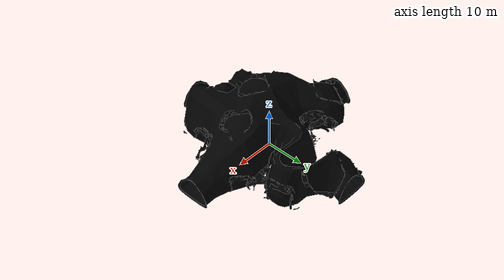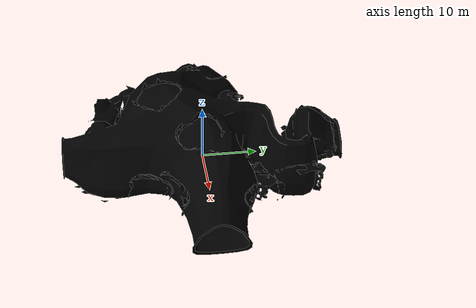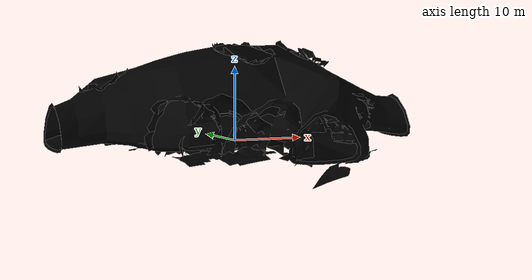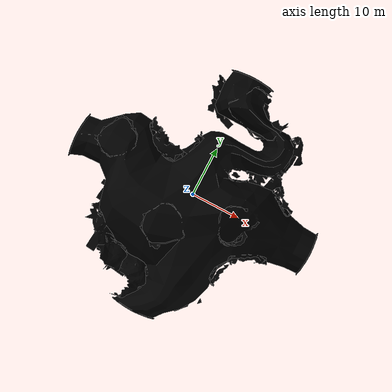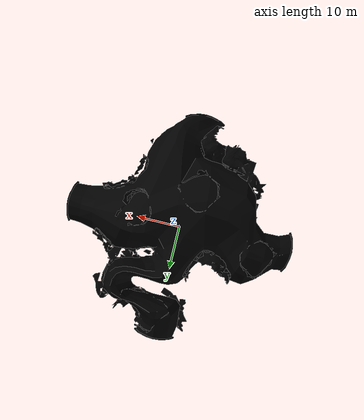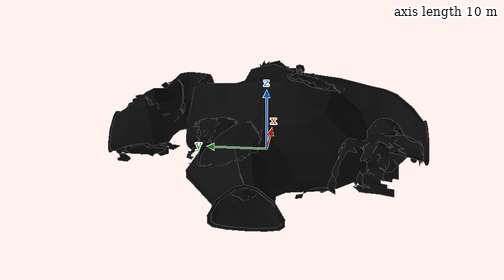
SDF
<sdf version="1.6">
  <model name="Cave 4 Way 01 Lights Type A">
    <static>true</static>
    <include>
      <name>cave_4way_01_type_a</name>
      <uri>model://Cave 4 Way 01 Type A</uri>
    </include>
    <link name="lights">
      <light name="Omni012" type="spot">
        <pose>5.76187 0.0888174 5.11374 0 0 0</pose>
        <attenuation>
          <range>20</range>
          <linear>0.2</linear>
          <constant>1.0</constant>
          <quadratic>0.01</quadratic>
        </attenuation>
        <spot>
          <inner_angle>2.0</inner_angle>
          <outer_angle>3.1</outer_angle>
          <falloff>1.2</falloff>
        </spot>
        <cast_shadows>false</cast_shadows>
      </light>
      <light name="Omni013" type="spot">
        <pose>-11.574 -3.89308 6.40369 0 0 0</pose>
        <diffuse>0 0 0 1</diffuse>
        <specular>0 0 0 1</specular>
        <attenuation>
          <range>20</range>
          <linear>0.2</linear>
          <constant>1.0</constant>
          <quadratic>0.01</quadratic>
        </attenuation>
        <spot>
          <inner_angle>2.0</inner_angle>
          <outer_angle>3.1</outer_angle>
          <falloff>1.2</falloff>
        </spot>
        <cast_shadows>false</cast_shadows>
      </light>
    </link>
  </model>
</sdf>

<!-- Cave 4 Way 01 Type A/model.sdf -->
<sdf version="1.6">
  <model name="Cave 4 Way 01 Type A">
    <static>true</static>
    <link name="base_link">
      <collision name="collision">
        <pose>0 0 0 0 0 0</pose>
        <geometry>
          <mesh>
            <uri>model://Cave 4 Way 01 Type A/meshes/4way01.dae</uri>
            <scale>1.0 1.0 1.0</scale>
          </mesh>
        </geometry>
      </collision>
      <visual name="Gravel_visual">
        <geometry>
          <mesh>
            <uri>model://Cave 4 Way 01 Type A/meshes/4way01.dae</uri>
            <submesh>
              <name>Gravel</name>
              <center>false</center>
            </submesh>
          </mesh>
        </geometry>
        <material>
          <diffuse>0 0 0 1</diffuse>
          <specular>0 0 0 1</specular>
          <pbr>
            <metal>
              <albedo_map>model://Cave 4 Way 01 Type A/materials/textures/Gravel_Albedo.png</albedo_map>
              <normal_map>model://Cave 4 Way 01 Type A/materials/textures/Gravel_Normal.png</normal_map>
              <roughness_map>model://Cave 4 Way 01 Type A/materials/textures/Gravel_Roughness.png</roughness_map>
            </metal>
          </pbr>

          <script>
            <uri>model://Cave 4 Way 01 Type A/materials/scripts/</uri>
            <uri>model://Cave 4 Way 01 Type A/materials/textures/</uri>
            <name>CaveTile/Gravel_Diffuse</name>
          </script>
        </material>
      </visual>
      <visual name="RockPile_visual">
        <geometry>
          <mesh>
            <uri>model://Cave 4 Way 01 Type A/meshes/4way01.dae</uri>
            <submesh>
              <name>RockPile</name>
              <center>false</center>
            </submesh>
          </mesh>
        </geometry>
        <material>
          <diffuse>0 0 0 1</diffuse>
          <specular>0 0 0 1</specular>
          <pbr>
            <metal>
              <albedo_map>model://Cave 4 Way 01 Type A/materials/textures/RockPile_Albedo.png</albedo_map>
              <normal_map>model://Cave 4 Way 01 Type A/materials/textures/RockPile_Normal.png</normal_map>
              <roughness_map>model://Cave 4 Way 01 Type A/materials/textures/RockPile_Roughness.png</roughness_map>
            </metal>
          </pbr>

          <script>
            <uri>model://Cave 4 Way 01 Type A/materials/scripts/</uri>
            <uri>model://Cave 4 Way 01 Type A/materials/textures/</uri>
            <name>CaveTile/RockPile_Diffuse</name>
          </script>
        </material>
      </visual>
      <visual name="StriatedRock_visual">
        <geometry>
          <mesh>
            <uri>model://Cave 4 Way 01 Type A/meshes/4way01.dae</uri>
            <submesh>
              <name>StriatedRock</name>
              <center>false</center>
            </submesh>
          </mesh>
        </geometry>
        <material>
          <diffuse>0 0 0 1</diffuse>
          <specular>0 0 0 1</specular>
          <pbr>
            <metal>
              <albedo_map>model://Cave 4 Way 01 Type A/materials/textures/StriatedRock_Albedo.png</albedo_map>
              <normal_map>model://Cave 4 Way 01 Type A/materials/textures/StriatedRock_Normal.png</normal_map>
              <roughness_map>model://Cave 4 Way 01 Type A/materials/textures/StriatedRock_Roughness.png</roughness_map>
            </metal>
          </pbr>

          <script>
            <uri>model://Cave 4 Way 01 Type A/materials/scripts/</uri>
            <uri>model://Cave 4 Way 01 Type A/materials/textures/</uri>
            <name>CaveTile/StriatedRock_Diffuse</name>
          </script>
        </material>
      </visual>
      <visual name="CaveWall_visual">
        <geometry>
          <mesh>
            <uri>model://Cave 4 Way 01 Type A/meshes/4way01.dae</uri>
            <submesh>
              <name>CaveWall</name>
              <center>false</center>
            </submesh>
          </mesh>
        </geometry>
        <material>
          <diffuse>0 0 0 1</diffuse>
          <specular>0 0 0 1</specular>
          <pbr>
            <metal>
              <albedo_map>model://Cave 4 Way 01 Type A/materials/textures/CaveWall_Albedo.png</albedo_map>
              <normal_map>model://Cave 4 Way 01 Type A/materials/textures/CaveWall_Normal.png</normal_map>
              <roughness_map>model://Cave 4 Way 01 Type A/materials/textures/CaveWall_Roughness.png</roughness_map>
            </metal>
          </pbr>

          <script>
            <uri>model://Cave 4 Way 01 Type A/materials/scripts/</uri>
            <uri>model://Cave 4 Way 01 Type A/materials/textures/</uri>
            <name>CaveTile/CaveWall_Diffuse</name>
          </script>
        </material>
      </visual>
    </link>

    <plugin filename="libignition-gazebo-performer-detector-system.so" name="ignition::gazebo::systems::PerformerDetector">
      <topic>/subt_performer_detector</topic>
      <pose>0 -5 5 0 0 0</pose>
      <header_data>
        <key>type</key>
        <value>decision</value>
      </header_data>
      <geometry>
        <box>
          <size>20 20 12</size>
        </box>
      </geometry>
    </plugin>
  </model>
</sdf>
